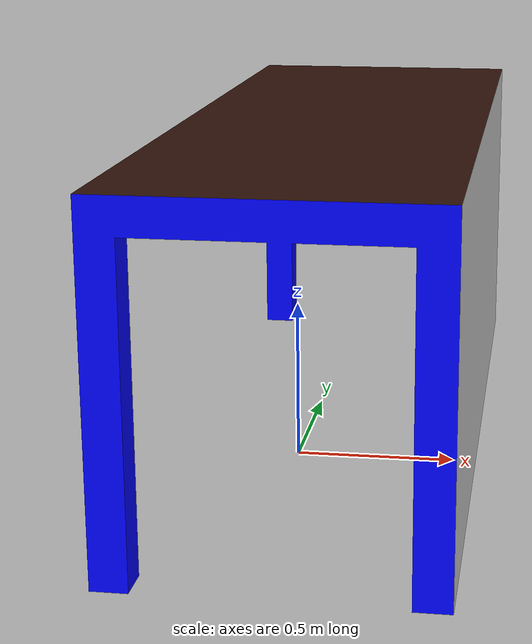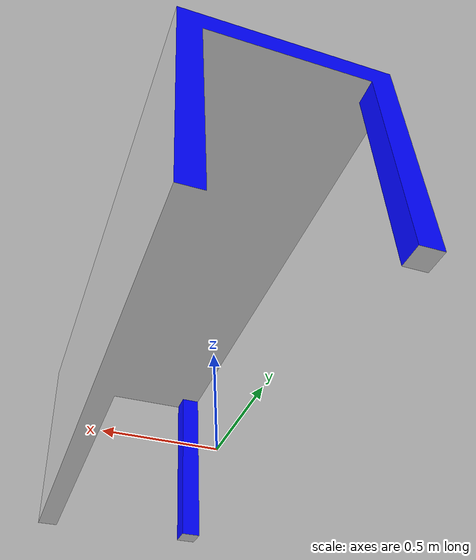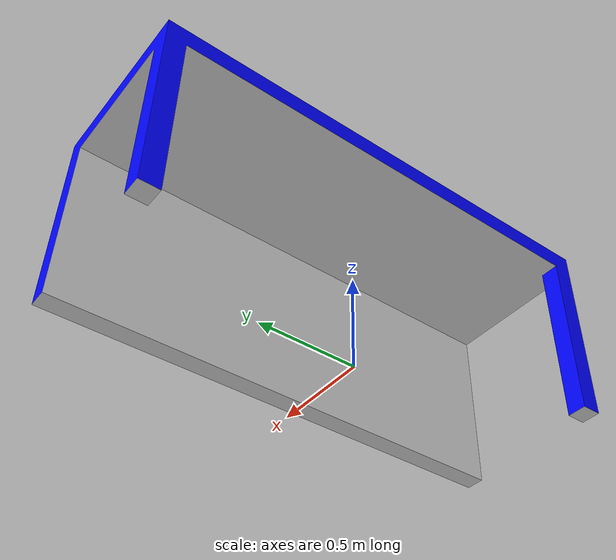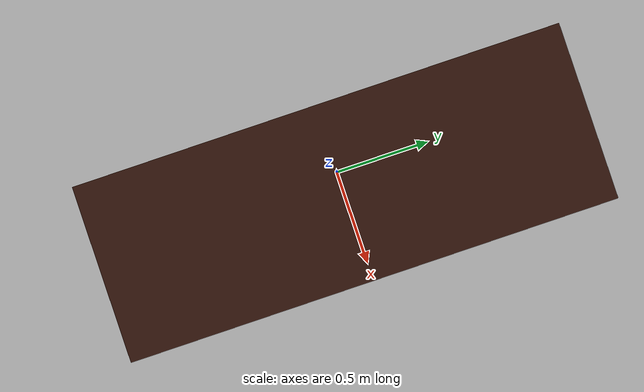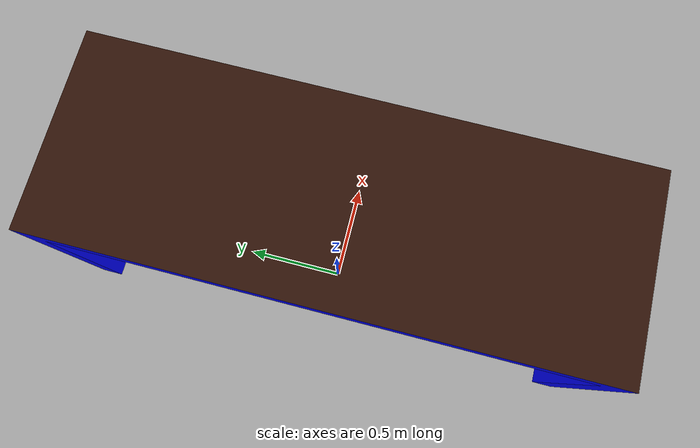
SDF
<?xml version="1.0" ?>
<sdf version="1.5">
  <model name="masa">
    <static>true</static>
    <pose>0 0 0.567 0 0 0</pose>
    <link name="link">
      <collision name="surface">

        <geometry>
          <mesh>
            <uri>model://masa/meshes/masa1.dae</uri>
          </mesh>
        </geometry>
      </collision>

      <collision name="column">

        <geometry>
          <mesh>
            <uri>model://masa/meshes/masa1.dae</uri>
          </mesh>
        </geometry>
      </collision>

      <collision name="base">

        <geometry>
          <mesh>
            <uri>model://masa/meshes/masa1.dae</uri>
          </mesh>
        </geometry>
      </collision>

      <visual name="visual">
        <geometry>
          <mesh>
            <uri>model://masa/meshes/masa1.dae</uri>
          </mesh>
        </geometry>
      </visual>
    </link>
  </model>
</sdf>
